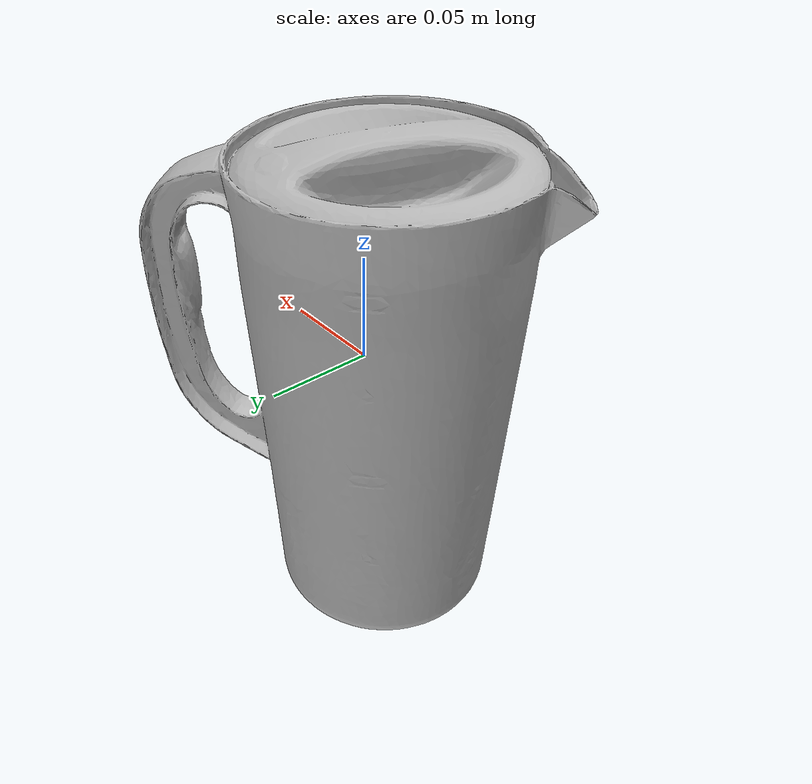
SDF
<?xml version='1.0'?>
<sdf version="1.4">
  <model name="pitcher_base">
    <static>false</static>
    <link name="link">
      <inertial>
        <pose>-0.013413446511744047 0.03347736239251225 0.12263624751276252 3.127817997148494 -0.00452021653703865 -0.833596077534243</pose>
        <mass>0.0025490222330232276</mass>
        <inertia>
          <ixx>1.3427327160192555e-05</ixx>
          <ixy>8.839744882107692e-22</ixy>
          <ixz>-1.5752498176756463e-21</ixz>
          <iyy>1.326831085149032e-05</iyy>
          <iyz>-1.3566857513327304e-21</iyz>
          <izz>4.702625186734818e-06</izz>
        </inertia>
      </inertial>
      <collision name="collision">
        <geometry>
          <mesh>
            <!-- Use a downsampled mesh for collisions -->
            <uri>textured.obj</uri>
	        </mesh>
        </geometry>
        <surface>
      </surface>
      </collision>
      <visual name="visual">
        <geometry>
          <mesh>
            <uri>textured.obj</uri>
	        </mesh>
        </geometry>
      </visual>
    </link>
  </model>
</sdf>
